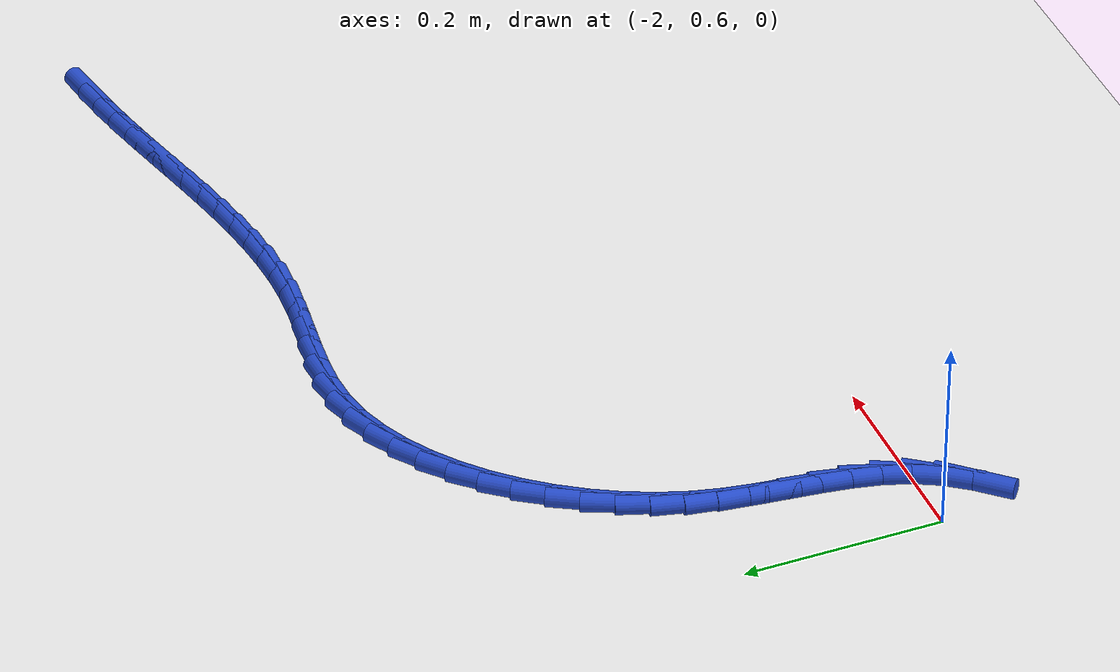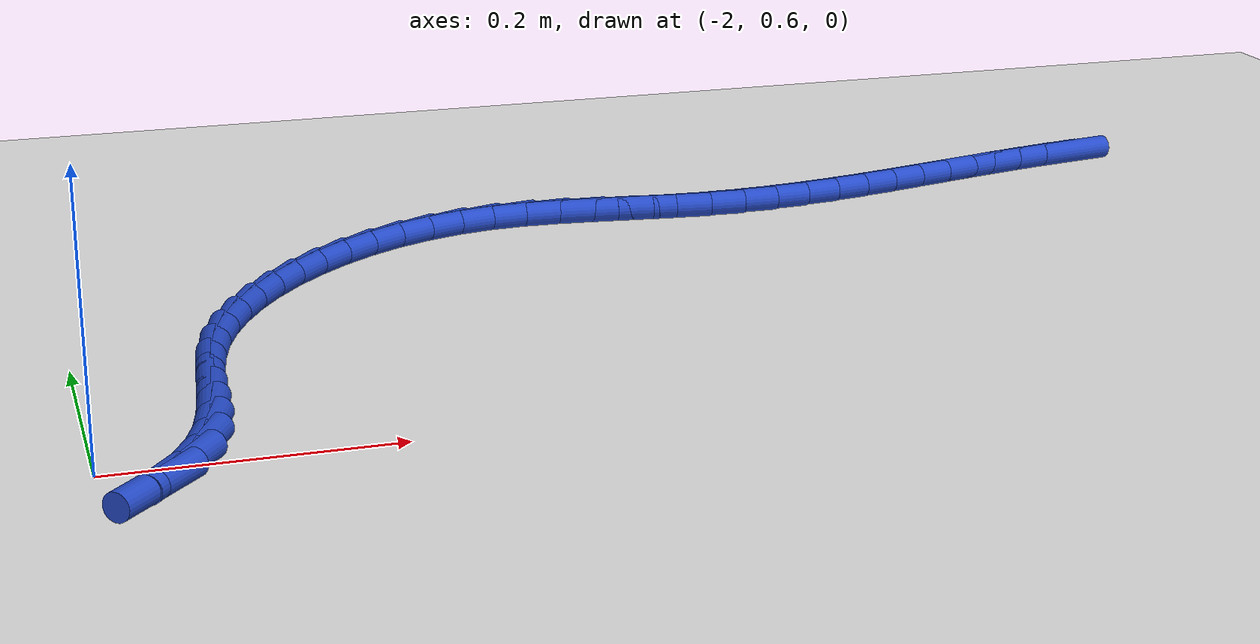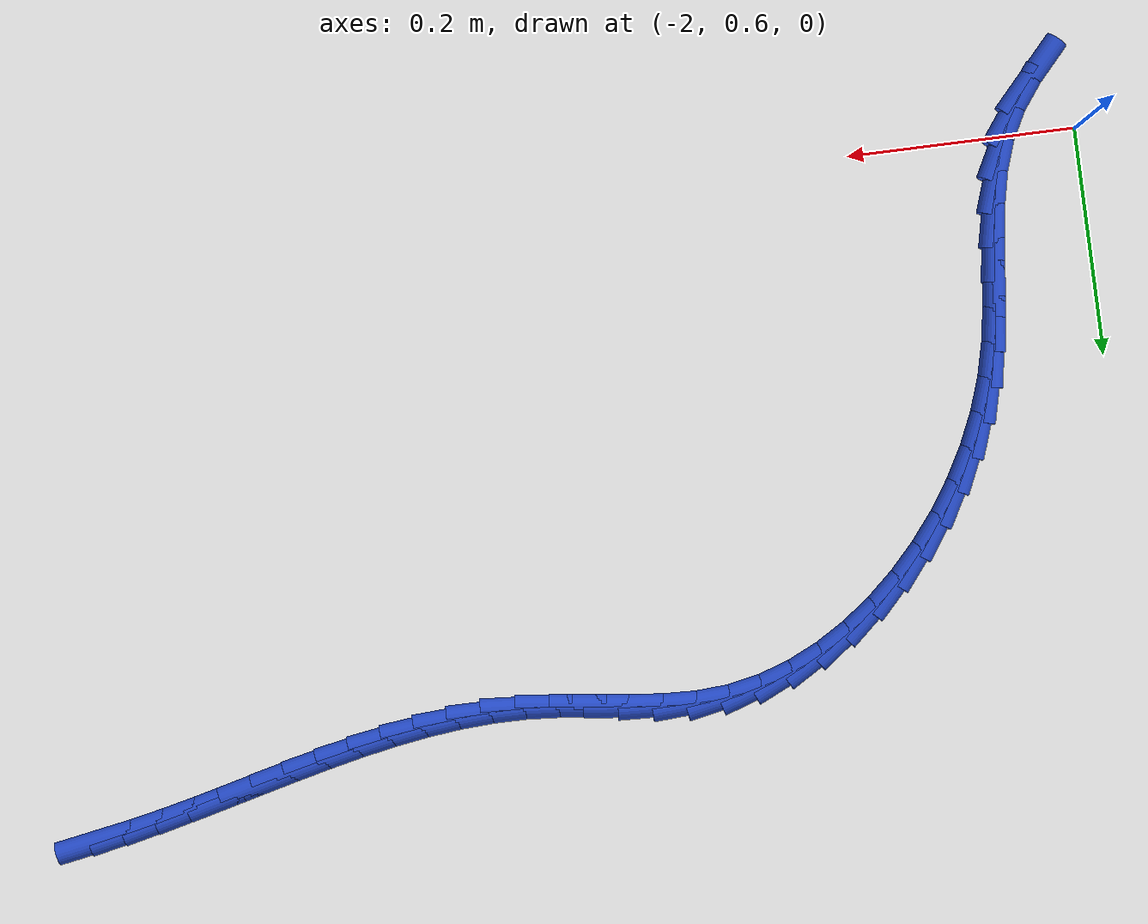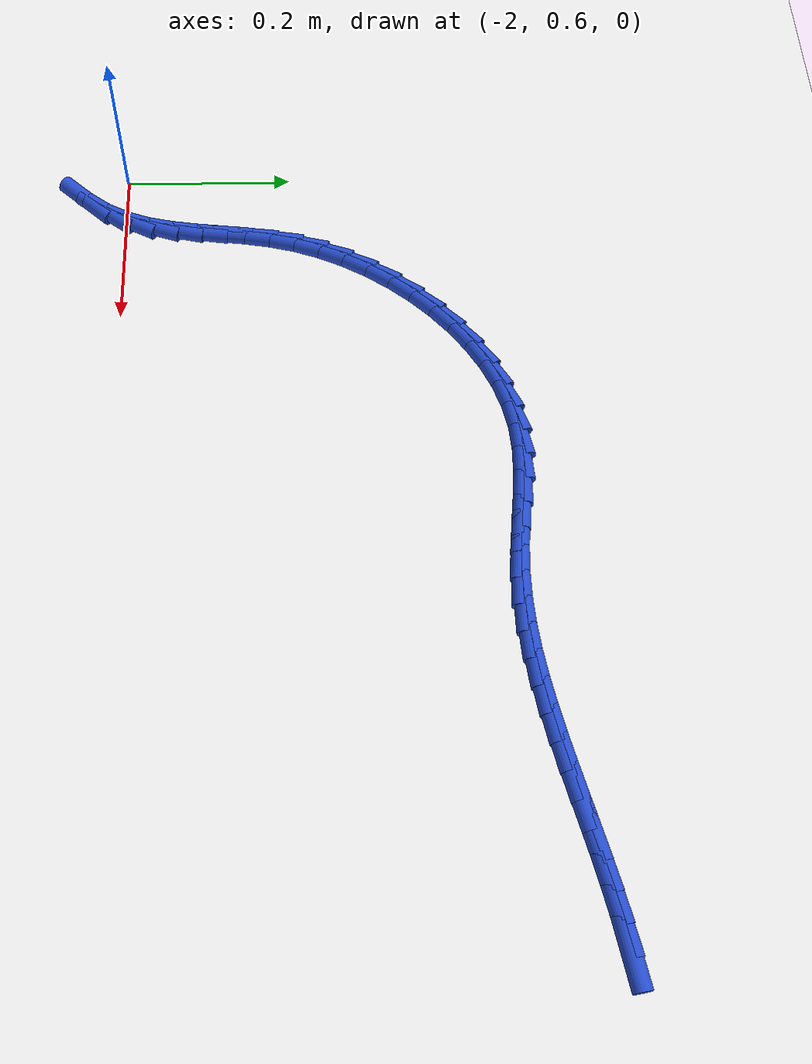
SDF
<sdf version="1.6">
 <world name="default">
  <model name="ground_plane">
   <static>1</static>
   <link name="link">
    <collision name="collision">
     <geometry><plane><normal>0 0 1</normal><size>100 100</size></plane></geometry>
     <surface><friction><ode><mu>100</mu><mu2>50</mu2></ode></friction></surface>
    </collision>
    <visual name="visual">
     <cast_shadows>0</cast_shadows>
     <geometry><plane><normal>0 0 1</normal><size>100 100</size></plane></geometry>
     <material>
      <script><uri>file://media/materials/scripts/gazebo.material</uri><name>Gazebo/WhiteGlow</name></script>
     </material>
    </visual>
   </link>
  </model>
  <model name="line">
   <link name="link_59">
    <pose>-1.081901980693283 1.1101963447810264 0.01 0 1.57 0.17443238515272955</pose>
    <collision name="collision">
     <geometry><cylinder><radius>0.01</radius><length>0.08</length></cylinder></geometry>
    </collision>
    <visual name="visual">
     <material>
      <script><name>Gazebo/Blue</name><uri>file://media/materials/scripts/gazebo.material</uri></script>
     </material>
     <geometry><cylinder><radius>0.01</radius><length>0.08</length></cylinder></geometry>
    </visual>
   </link>
   <link name="link_60">
    <pose>-1.1110974634827628 1.105051419974475 0.01 0 1.57 0.20522141441779013</pose>
    <collision name="collision">
     <geometry><cylinder><radius>0.01</radius><length>0.08</length></cylinder></geometry>
    </collision>
    <visual name="visual">
     <material>
      <script><name>Gazebo/Blue</name><uri>file://media/materials/scripts/gazebo.material</uri></script>
     </material>
     <geometry><cylinder><radius>0.01</radius><length>0.08</length></cylinder></geometry>
    </visual>
   </link>
   <link name="link_61">
    <pose>-1.1402323483003993 1.0989869408446247 0.01 0 1.57 0.22757157438810824</pose>
    <collision name="collision">
     <geometry><cylinder><radius>0.01</radius><length>0.08</length></cylinder></geometry>
    </collision>
    <visual name="visual">
     <material>
      <script><name>Gazebo/Blue</name><uri>file://media/materials/scripts/gazebo.material</uri></script>
     </material>
     <geometry><cylinder><radius>0.01</radius><length>0.08</length></cylinder></geometry>
    </visual>
   </link>
   <link name="link_62">
    <pose>-1.1693226168397495 1.0922501218102276 0.01 0 1.57 0.24162513084706339</pose>
    <collision name="collision">
     <geometry><cylinder><radius>0.01</radius><length>0.08</length></cylinder></geometry>
    </collision>
    <visual name="visual">
     <material>
      <script><name>Gazebo/Blue</name><uri>file://media/materials/scripts/gazebo.material</uri></script>
     </material>
     <geometry><cylinder><radius>0.01</radius><length>0.08</length></cylinder></geometry>
    </visual>
   </link>
   <link name="link_63">
    <pose>-1.1983842507943707 1.085088177290035 0.01 0 1.57 0.24749162441161918</pose>
    <collision name="collision">
     <geometry><cylinder><radius>0.01</radius><length>0.08</length></cylinder></geometry>
    </collision>
    <visual name="visual">
     <material>
      <script><name>Gazebo/Blue</name><uri>file://media/materials/scripts/gazebo.material</uri></script>
     </material>
     <geometry><cylinder><radius>0.01</radius><length>0.08</length></cylinder></geometry>
    </visual>
   </link>
   <link name="link_64">
    <pose>-1.227433231857819 1.077748321702798 0.01 0 1.57 0.24522080052676498</pose>
    <collision name="collision">
     <geometry><cylinder><radius>0.01</radius><length>0.08</length></cylinder></geometry>
    </collision>
    <visual name="visual">
     <material>
      <script><name>Gazebo/Blue</name><uri>file://media/materials/scripts/gazebo.material</uri></script>
     </material>
     <geometry><cylinder><radius>0.01</radius><length>0.08</length></cylinder></geometry>
    </visual>
   </link>
   <link name="link_65">
    <pose>-1.256485541723651 1.0704777694672685 0.01 0 1.57 0.23479176100697835</pose>
    <collision name="collision">
     <geometry><cylinder><radius>0.01</radius><length>0.08</length></cylinder></geometry>
    </collision>
    <visual name="visual">
     <material>
      <script><name>Gazebo/Blue</name><uri>file://media/materials/scripts/gazebo.material</uri></script>
     </material>
     <geometry><cylinder><radius>0.01</radius><length>0.08</length></cylinder></geometry>
    </visual>
   </link>
   <link name="link_66">
    <pose>-1.2855571620854238 1.0635237350021969 0.01 0 1.57 0.2161170935478966</pose>
    <collision name="collision">
     <geometry><cylinder><radius>0.01</radius><length>0.08</length></cylinder></geometry>
    </collision>
    <visual name="visual">
     <material>
      <script><name>Gazebo/Blue</name><uri>file://media/materials/scripts/gazebo.material</uri></script>
     </material>
     <geometry><cylinder><radius>0.01</radius><length>0.08</length></cylinder></geometry>
    </visual>
   </link>
   <link name="link_67">
    <pose>-1.3146640746366942 1.0571334327263355 0.01 0 1.57 0.18906249187936325</pose>
    <collision name="collision">
     <geometry><cylinder><radius>0.01</radius><length>0.08</length></cylinder></geometry>
    </collision>
    <visual name="visual">
     <material>
      <script><name>Gazebo/Blue</name><uri>file://media/materials/scripts/gazebo.material</uri></script>
     </material>
     <geometry><cylinder><radius>0.01</radius><length>0.08</length></cylinder></geometry>
    </visual>
   </link>
   <link name="link_68">
    <pose>-1.3438222610710182 1.0515540770584348 0.01 0 1.57 0.15348395219990973</pose>
    <collision name="collision">
     <geometry><cylinder><radius>0.01</radius><length>0.08</length></cylinder></geometry>
    </collision>
    <visual name="visual">
     <material>
      <script><name>Gazebo/Blue</name><uri>file://media/materials/scripts/gazebo.material</uri></script>
     </material>
     <geometry><cylinder><radius>0.01</radius><length>0.08</length></cylinder></geometry>
    </visual>
   </link>
   <link name="link_69">
    <pose>-1.373047703081953 1.0470328824172468 0.01 0 1.57 0.1092852563280532</pose>
    <collision name="collision">
     <geometry><cylinder><radius>0.01</radius><length>0.08</length></cylinder></geometry>
    </collision>
    <visual name="visual">
     <material>
      <script><name>Gazebo/Blue</name><uri>file://media/materials/scripts/gazebo.material</uri></script>
     </material>
     <geometry><cylinder><radius>0.01</radius><length>0.08</length></cylinder></geometry>
    </visual>
   </link>
   <link name="link_70">
    <pose>-1.4023563823630563 1.0438170632215225 0.01 0 1.57 0.05649704414639845</pose>
    <collision name="collision">
     <geometry><cylinder><radius>0.01</radius><length>0.08</length></cylinder></geometry>
    </collision>
    <visual name="visual">
     <material>
      <script><name>Gazebo/Blue</name><uri>file://media/materials/scripts/gazebo.material</uri></script>
     </material>
     <geometry><cylinder><radius>0.01</radius><length>0.08</length></cylinder></geometry>
    </visual>
   </link>
   <link name="link_71">
    <pose>-1.431764280607883 1.0421538338900131 0.01 0 1.57 -0.00462600412232268</pose>
    <collision name="collision">
     <geometry><cylinder><radius>0.01</radius><length>0.08</length></cylinder></geometry>
    </collision>
    <visual name="visual">
     <material>
      <script><name>Gazebo/Blue</name><uri>file://media/materials/scripts/gazebo.material</uri></script>
     </material>
     <geometry><cylinder><radius>0.01</radius><length>0.08</length></cylinder></geometry>
    </visual>
   </link>
   <link name="link_72">
    <pose>-1.4612873795099905 1.0422904088414702 0.01 0 1.57 -0.07126255474512719</pose>
    <collision name="collision">
     <geometry><cylinder><radius>0.01</radius><length>0.08</length></cylinder></geometry>
    </collision>
    <visual name="visual">
     <material>
      <script><name>Gazebo/Blue</name><uri>file://media/materials/scripts/gazebo.material</uri></script>
     </material>
     <geometry><cylinder><radius>0.01</radius><length>0.08</length></cylinder></geometry>
    </visual>
   </link>
   <link name="link_73">
    <pose>-1.4909364174710387 1.0444068589384972 0.01 0 1.57 -0.11735615497983054</pose>
    <collision name="collision">
     <geometry><cylinder><radius>0.01</radius><length>0.08</length></cylinder></geometry>
    </collision>
    <visual name="visual">
     <material>
      <script><name>Gazebo/Blue</name><uri>file://media/materials/scripts/gazebo.material</uri></script>
     </material>
     <geometry><cylinder><radius>0.01</radius><length>0.08</length></cylinder></geometry>
    </visual>
   </link>
   <link name="link_74">
    <pose>-1.520661860188151 1.04791142623842 0.01 0 1.57 -0.12743091473736504</pose>
    <collision name="collision">
     <geometry><cylinder><radius>0.01</radius><length>0.08</length></cylinder></geometry>
    </collision>
    <visual name="visual">
     <material>
      <script><name>Gazebo/Blue</name><uri>file://media/materials/scripts/gazebo.material</uri></script>
     </material>
     <geometry><cylinder><radius>0.01</radius><length>0.08</length></cylinder></geometry>
    </visual>
   </link>
   <link name="link_75">
    <pose>-1.5503756084801203 1.051718505970265 0.01 0 1.57 -0.10149404624901623</pose>
    <collision name="collision">
     <geometry><cylinder><radius>0.01</radius><length>0.08</length></cylinder></geometry>
    </collision>
    <visual name="visual">
     <material>
      <script><name>Gazebo/Blue</name><uri>file://media/materials/scripts/gazebo.material</uri></script>
     </material>
     <geometry><cylinder><radius>0.01</radius><length>0.08</length></cylinder></geometry>
    </visual>
   </link>
   <link name="link_76">
    <pose>-1.579988934675292 1.0547344451588758 0.01 0 1.57 -0.03842380934084437</pose>
    <collision name="collision">
     <geometry><cylinder><radius>0.01</radius><length>0.08</length></cylinder></geometry>
    </collision>
    <visual name="visual">
     <material>
      <script><name>Gazebo/Blue</name><uri>file://media/materials/scripts/gazebo.material</uri></script>
     </material>
     <geometry><cylinder><radius>0.01</radius><length>0.08</length></cylinder></geometry>
    </visual>
   </link>
   <link name="link_77">
    <pose>-1.6094131111020091 1.0558655908290944 0.01 0 1.57 0.06329437635696805</pose>
    <collision name="collision">
     <geometry><cylinder><radius>0.01</radius><length>0.08</length></cylinder></geometry>
    </collision>
    <visual name="visual">
     <material>
      <script><name>Gazebo/Blue</name><uri>file://media/materials/scripts/gazebo.material</uri></script>
     </material>
     <geometry><cylinder><radius>0.01</radius><length>0.08</length></cylinder></geometry>
    </visual>
   </link>
   <link name="link_78">
    <pose>-1.638559406687734 1.0540183267448333 0.01 0 1.57 0.1939424257647022</pose>
    <collision name="collision">
     <geometry><cylinder><radius>0.01</radius><length>0.08</length></cylinder></geometry>
    </collision>
    <visual name="visual">
     <material>
      <script><name>Gazebo/Blue</name><uri>file://media/materials/scripts/gazebo.material</uri></script>
     </material>
     <geometry><cylinder><radius>0.01</radius><length>0.08</length></cylinder></geometry>
    </visual>
   </link>
   <link name="link_79">
    <pose>-1.667313951023703 1.0483706120481817 0.01 0 1.57 0.32042051857694653</pose>
    <collision name="collision">
     <geometry><cylinder><radius>0.01</radius><length>0.08</length></cylinder></geometry>
    </collision>
    <visual name="visual">
     <material>
      <script><name>Gazebo/Blue</name><uri>file://media/materials/scripts/gazebo.material</uri></script>
     </material>
     <geometry><cylinder><radius>0.01</radius><length>0.08</length></cylinder></geometry>
    </visual>
   </link>
   <link name="link_80">
    <pose>-1.695477339257666 1.0390244179008783 0.01 0 1.57 0.4360523716702178</pose>
    <collision name="collision">
     <geometry><cylinder><radius>0.01</radius><length>0.08</length></cylinder></geometry>
    </collision>
    <visual name="visual">
     <material>
      <script><name>Gazebo/Blue</name><uri>file://media/materials/scripts/gazebo.material</uri></script>
     </material>
     <geometry><cylinder><radius>0.01</radius><length>0.08</length></cylinder></geometry>
    </visual>
   </link>
   <link name="link_81">
    <pose>-1.722831991616581 1.0262780556123599 0.01 0 1.57 0.541848656607764</pose>
    <collision name="collision">
     <geometry><cylinder><radius>0.01</radius><length>0.08</length></cylinder></geometry>
    </collision>
    <visual name="visual">
     <material>
      <script><name>Gazebo/Blue</name><uri>file://media/materials/scripts/gazebo.material</uri></script>
     </material>
     <geometry><cylinder><radius>0.01</radius><length>0.08</length></cylinder></geometry>
    </visual>
   </link>
   <link name="link_82">
    <pose>-1.7491603283274038 1.0104298364920652 0.01 0 1.57 0.6393661739529859</pose>
    <collision name="collision">
     <geometry><cylinder><radius>0.01</radius><length>0.08</length></cylinder></geometry>
    </collision>
    <visual name="visual">
     <material>
      <script><name>Gazebo/Blue</name><uri>file://media/materials/scripts/gazebo.material</uri></script>
     </material>
     <geometry><cylinder><radius>0.01</radius><length>0.08</length></cylinder></geometry>
    </visual>
   </link>
   <link name="link_83">
    <pose>-1.7742447696170927 0.9917780718494316 0.01 0 1.57 0.7303851893943507</pose>
    <collision name="collision">
     <geometry><cylinder><radius>0.01</radius><length>0.08</length></cylinder></geometry>
    </collision>
    <visual name="visual">
     <material>
      <script><name>Gazebo/Blue</name><uri>file://media/materials/scripts/gazebo.material</uri></script>
     </material>
     <geometry><cylinder><radius>0.01</radius><length>0.08</length></cylinder></geometry>
    </visual>
   </link>
   <link name="link_84">
    <pose>-1.797867735712604 0.9706210729938964 0.01 0 1.57 0.8167293011573173</pose>
    <collision name="collision">
     <geometry><cylinder><radius>0.01</radius><length>0.08</length></cylinder></geometry>
    </collision>
    <visual name="visual">
     <material>
      <script><name>Gazebo/Blue</name><uri>file://media/materials/scripts/gazebo.material</uri></script>
     </material>
     <geometry><cylinder><radius>0.01</radius><length>0.08</length></cylinder></geometry>
    </visual>
   </link>
   <link name="link_85">
    <pose>-1.819811646840896 0.9472571512348977 0.01 0 1.57 0.9001887144402736</pose>
    <collision name="collision">
     <geometry><cylinder><radius>0.01</radius><length>0.08</length></cylinder></geometry>
    </collision>
    <visual name="visual">
     <material>
      <script><name>Gazebo/Blue</name><uri>file://media/materials/scripts/gazebo.material</uri></script>
     </material>
     <geometry><cylinder><radius>0.01</radius><length>0.08</length></cylinder></geometry>
    </visual>
   </link>
   <link name="link_86">
    <pose>-1.8398589232289246 0.9219846178818737 0.01 0 1.57 0.9825060482183996</pose>
    <collision name="collision">
     <geometry><cylinder><radius>0.01</radius><length>0.08</length></cylinder></geometry>
    </collision>
    <visual name="visual">
     <material>
      <script><name>Gazebo/Blue</name><uri>file://media/materials/scripts/gazebo.material</uri></script>
     </material>
     <geometry><cylinder><radius>0.01</radius><length>0.08</length></cylinder></geometry>
    </visual>
   </link>
   <link name="link_87">
    <pose>-1.8577919851036477 0.8951017842442616 0.01 0 1.57 1.0653939420895477</pose>
    <collision name="collision">
     <geometry><cylinder><radius>0.01</radius><length>0.08</length></cylinder></geometry>
    </collision>
    <visual name="visual">
     <material>
      <script><name>Gazebo/Blue</name><uri>file://media/materials/scripts/gazebo.material</uri></script>
     </material>
     <geometry><cylinder><radius>0.01</radius><length>0.08</length></cylinder></geometry>
    </visual>
   </link>
   <link name="link_88">
    <pose>-1.8733932526920227 0.8669069616314995 0.01 0 1.57 1.1505628833246044</pose>
    <collision name="collision">
     <geometry><cylinder><radius>0.01</radius><length>0.08</length></cylinder></geometry>
    </collision>
    <visual name="visual">
     <material>
      <script><name>Gazebo/Blue</name><uri>file://media/materials/scripts/gazebo.material</uri></script>
     </material>
     <geometry><cylinder><radius>0.01</radius><length>0.08</length></cylinder></geometry>
    </visual>
   </link>
   <link name="link_89">
    <pose>-1.886445146221007 0.8376984613530246 0.01 0 1.57 1.2397417769169463</pose>
    <collision name="collision">
     <geometry><cylinder><radius>0.01</radius><length>0.08</length></cylinder></geometry>
    </collision>
    <visual name="visual">
     <material>
      <script><name>Gazebo/Blue</name><uri>file://media/materials/scripts/gazebo.material</uri></script>
     </material>
     <geometry><cylinder><radius>0.01</radius><length>0.08</length></cylinder></geometry>
    </visual>
   </link>
   <link name="link_90">
    <pose>-1.8967300859175573 0.8077745947182756 0.01 0 1.57 1.3331350061133607</pose>
    <collision name="collision">
     <geometry><cylinder><radius>0.01</radius><length>0.08</length></cylinder></geometry>
    </collision>
    <visual name="visual">
     <material>
      <script><name>Gazebo/Blue</name><uri>file://media/materials/scripts/gazebo.material</uri></script>
     </material>
     <geometry><cylinder><radius>0.01</radius><length>0.08</length></cylinder></geometry>
    </visual>
   </link>
   <link name="link_91">
    <pose>-1.9040801287050015 0.7774325308915592 0.01 0 1.57 1.4096292252671587</pose>
    <collision name="collision">
     <geometry><cylinder><radius>0.01</radius><length>0.08</length></cylinder></geometry>
    </collision>
    <visual name="visual">
     <material>
      <script><name>Gazebo/Blue</name><uri>file://media/materials/scripts/gazebo.material</uri></script>
     </material>
     <geometry><cylinder><radius>0.01</radius><length>0.08</length></cylinder></geometry>
    </visual>
   </link>
   <link name="link_92">
    <pose>-1.9090353811371314 0.7469531467474676 0.01 0 1.57 1.4518004750314808</pose>
    <collision name="collision">
     <geometry><cylinder><radius>0.01</radius><length>0.08</length></cylinder></geometry>
    </collision>
    <visual name="visual">
     <material>
      <script><name>Gazebo/Blue</name><uri>file://media/materials/scripts/gazebo.material</uri></script>
     </material>
     <geometry><cylinder><radius>0.01</radius><length>0.08</length></cylinder></geometry>
    </visual>
   </link>
   <link name="link_93">
    <pose>-1.9126638064793569 0.7166051731271753 0.01 0 1.57 1.458338113608298</pose>
    <collision name="collision">
     <geometry><cylinder><radius>0.01</radius><length>0.08</length></cylinder></geometry>
    </collision>
    <visual name="visual">
     <material>
      <script><name>Gazebo/Blue</name><uri>file://media/materials/scripts/gazebo.material</uri></script>
     </material>
     <geometry><cylinder><radius>0.01</radius><length>0.08</length></cylinder></geometry>
    </visual>
   </link>
   <link name="link_94">
    <pose>-1.9160459888621246 0.6866570504645455 0.01 0 1.57 1.4277718280928435</pose>
    <collision name="collision">
     <geometry><cylinder><radius>0.01</radius><length>0.08</length></cylinder></geometry>
    </collision>
    <visual name="visual">
     <material>
      <script><name>Gazebo/Blue</name><uri>file://media/materials/scripts/gazebo.material</uri></script>
     </material>
     <geometry><cylinder><radius>0.01</radius><length>0.08</length></cylinder></geometry>
    </visual>
   </link>
   <link name="link_95">
    <pose>-1.9202625124158819 0.6573772191934408 0.01 0 1.57 1.3577497444852102</pose>
    <collision name="collision">
     <geometry><cylinder><radius>0.01</radius><length>0.08</length></cylinder></geometry>
    </collision>
    <visual name="visual">
     <material>
      <script><name>Gazebo/Blue</name><uri>file://media/materials/scripts/gazebo.material</uri></script>
     </material>
     <geometry><cylinder><radius>0.01</radius><length>0.08</length></cylinder></geometry>
    </visual>
   </link>
   <link name="link_96">
    <pose>-1.9263939612710765 0.6290341197477238 0.01 0 1.57 1.2463624820683659</pose>
    <collision name="collision">
     <geometry><cylinder><radius>0.01</radius><length>0.08</length></cylinder></geometry>
    </collision>
    <visual name="visual">
     <material>
      <script><name>Gazebo/Blue</name><uri>file://media/materials/scripts/gazebo.material</uri></script>
     </material>
     <geometry><cylinder><radius>0.01</radius><length>0.08</length></cylinder></geometry>
    </visual>
   </link>
   <link name="link_97">
    <pose>-1.935520919558155 0.6018961925612577 0.01 0 1.57 1.0957054787469696</pose>
    <collision name="collision">
     <geometry><cylinder><radius>0.01</radius><length>0.08</length></cylinder></geometry>
    </collision>
    <visual name="visual">
     <material>
      <script><name>Gazebo/Blue</name><uri>file://media/materials/scripts/gazebo.material</uri></script>
     </material>
     <geometry><cylinder><radius>0.01</radius><length>0.08</length></cylinder></geometry>
    </visual>
   </link>
   <link name="link_98">
    <pose>-1.9487225059051292 0.5762314955361233 0.01 0 1.57 0.9382045696095751</pose>
    <collision name="collision">
     <geometry><cylinder><radius>0.01</radius><length>0.08</length></cylinder></geometry>
    </collision>
    <visual name="visual">
     <material>
      <script><name>Gazebo/Blue</name><uri>file://media/materials/scripts/gazebo.material</uri></script>
     </material>
     <geometry><cylinder><radius>0.01</radius><length>0.08</length></cylinder></geometry>
    </visual>
   </link>
   <link name="link_99">
    <pose>-1.966391831838695 0.5521290220348908 0.01 0 1.57 0.834866172727714</pose>
    <collision name="collision">
     <geometry><cylinder><radius>0.01</radius><length>0.08</length></cylinder></geometry>
    </collision>
    <visual name="visual">
     <material>
      <script><name>Gazebo/Blue</name><uri>file://media/materials/scripts/gazebo.material</uri></script>
     </material>
     <geometry><cylinder><radius>0.01</radius><length>0.08</length></cylinder></geometry>
    </visual>
   </link>
  </model>
 </world>
</sdf>
